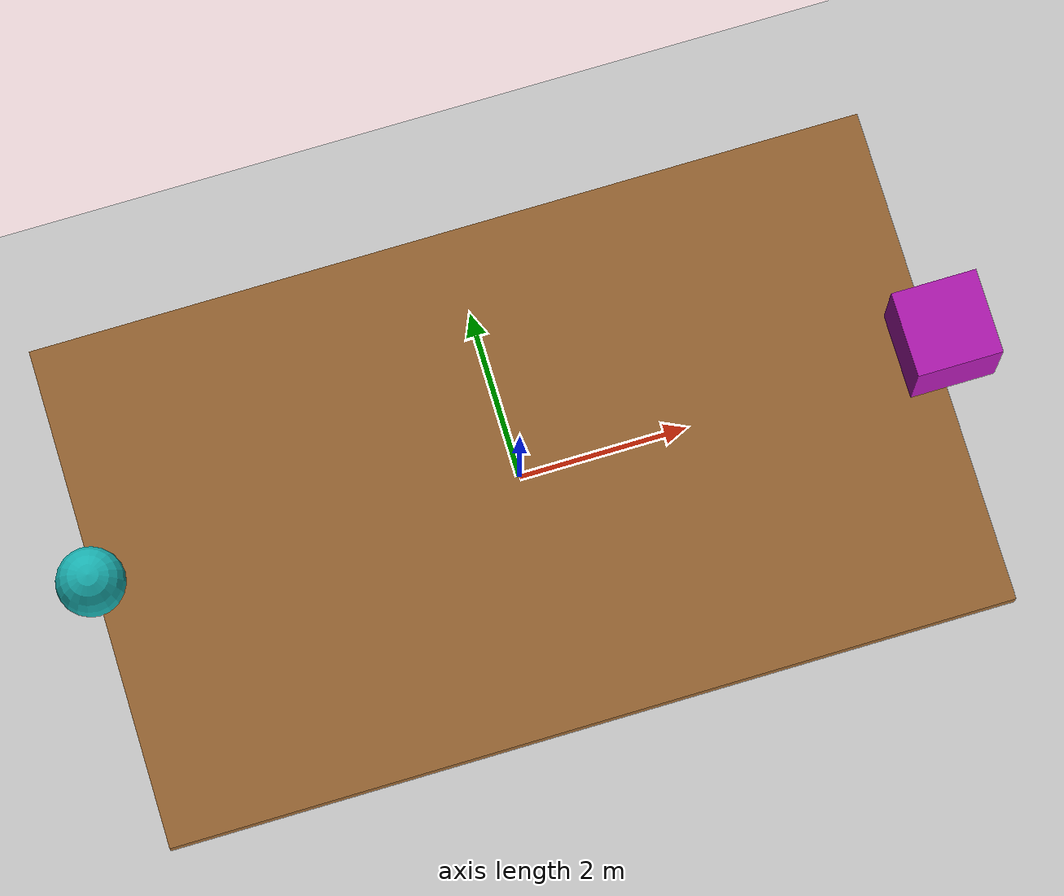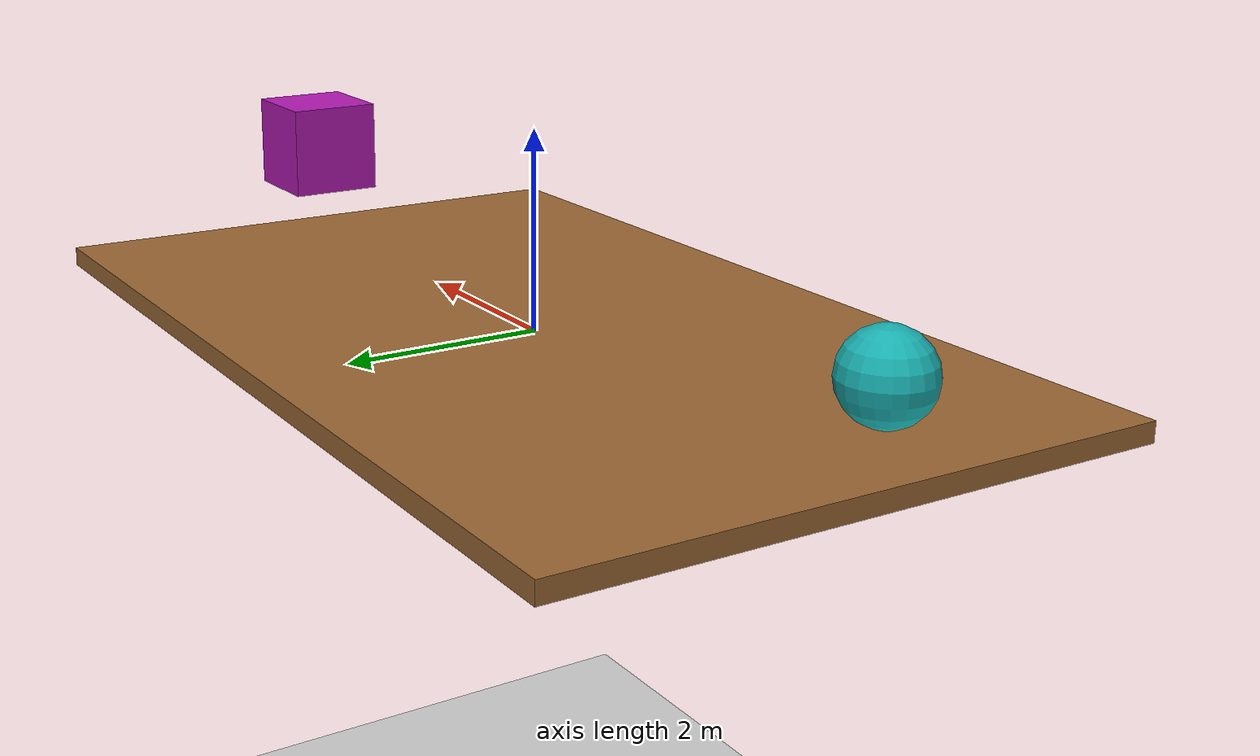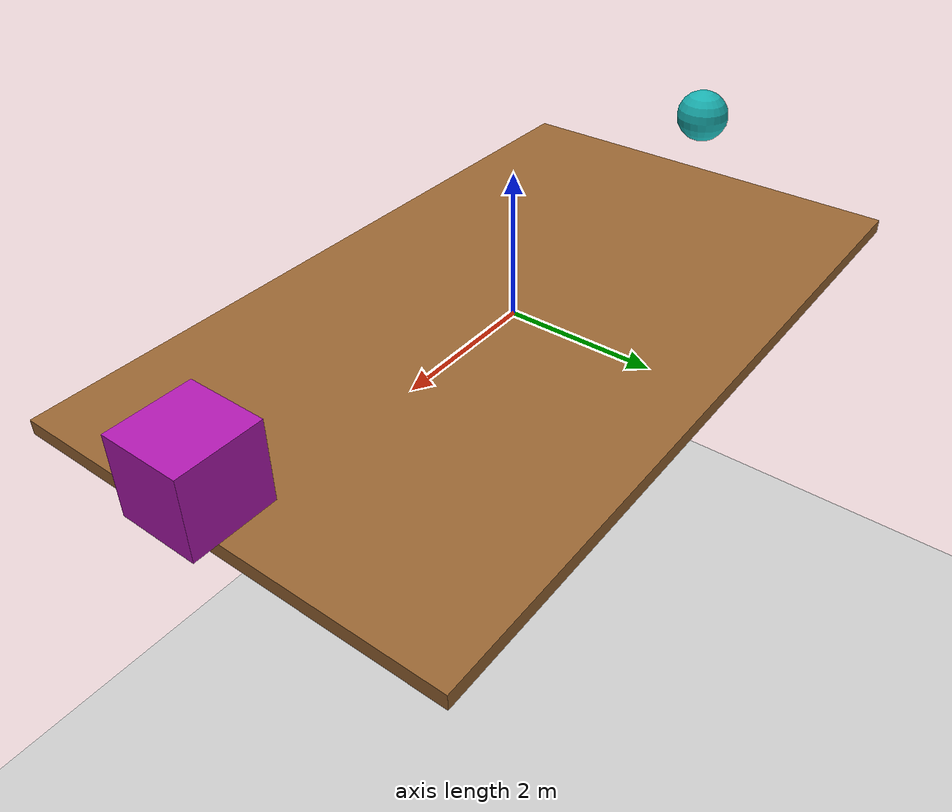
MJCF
<mujoco>
  <option gravity="0 0 -9.81"/>
  <worldbody>
    <!-- Rolling Sphere (Cyan) -->
    <body name="object_1" pos="-5 0 1">
      <geom type="sphere" size="0.4" density="1" rgba="0.1 0.7 0.7 1"/>
      <joint name="object_1_joint" type="free"/>
    </body>
    <!-- Sliding Cube (Purple, frictionless) -->
    <body name="object_2" pos="5 0 1">
      <geom type="box" size="0.5 0.5 0.5" density="1" rgba="0.7 0.1 0.7 1" friction="0 0 0"/>
      <joint name="object_2_joint" type="free"/>
    </body>
    <!-- Curved Ramp (approximated as angled plane) -->
    <body name="object_3" pos="0 0 0" euler="0.3 0 0">
      <geom type="box" size="5 3 0.1" rgba="0.6 0.4 0.2 1" friction="0.5 0.5 0.5"/>
    </body>
    <!-- Ground Surface -->
    <body name="object_4" pos="-10 0 -10">
      <geom type="plane" size="25 25 0.1" rgba="0.8 0.8 0.8 1" friction="1 1 1"/>
    </body>
  </worldbody>
</mujoco>
